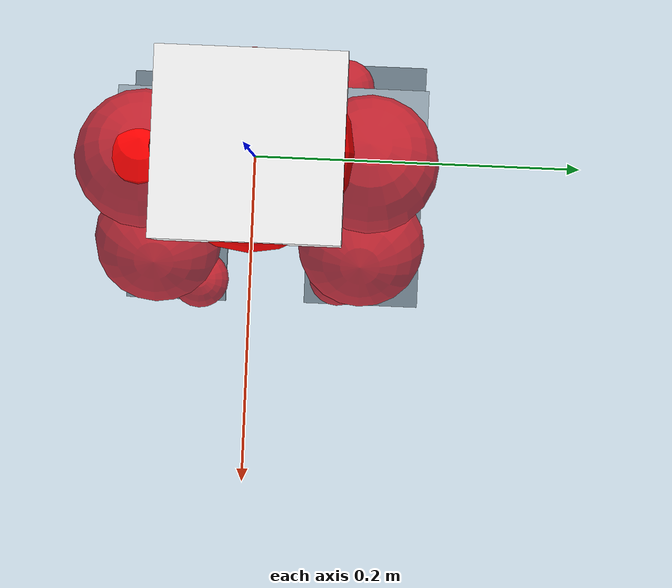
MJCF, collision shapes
<mujoco model="pi_12dof_release_v1">
  <compiler angle="radian" assetdir="assets" balanceinertia="true" inertiafromgeom="false"/>

  <option timestep="0.005" density="1.2" viscosity="2e-05"/>

  <size nkey="1"/>

  <visual>
    <quality shadowsize="8192"/>
    <map shadowclip="0.5"/>
  </visual>

  <default>
    <default class="/">
      <joint armature="0.01" damping="0.01" frictionloss="0.01"/>
      <geom contype="0" conaffinity="0" group="1" solref="-1000 -80"/>
      <site size="0.01 0.005 0.005" group="5"/>
      <general forcelimited="true" biastype="affine" gainprm="20" biasprm="0 -20 -0.5"/>
      <default class="foot">
        <geom size="0.0845 0.036 0.005" type="box" condim="6" group="4" priority="1" friction="0.9 0.2 0.2" solimp="0.015 1 0.005"/>
      </default>
      <default class="reward_collision_sphere">
        <geom group="5" rgba="1 0 0 1"/>
      </default>
    </default>
  </default>

  <asset>
    <texture type="skybox" colorspace="auto" name="//unnamed_texture_0" builtin="gradient" rgb1="0.95 0.95 0.95" rgb2="0.95 0.95 0.95" width="100" height="600"/>
    <texture type="2d" colorspace="auto" name="texplane" builtin="checker" rgb1="0.345 0.575 0.748" rgb2="0.345 0.575 0.748" markrgb="1 1 1" width="512" height="512"/>
    <material name="MatPlane" class="/" texture="texplane" texuniform="true" texrepeat="2 2" specular="0.9"/>
    <mesh name="baselink_1" class="/" file="baselink_1.STL"/>
    <mesh name="r_hip_pitch_link" class="/" file="r_hip_pitch_link.STL"/>
    <mesh name="r_hip_roll_link" class="/" file="r_hip_roll_link.STL"/>
    <mesh name="r_thigh_link" class="/" file="r_thigh_link.STL"/>
    <mesh name="r_calf_link" class="/" file="r_calf_link.STL"/>
    <mesh name="r_ankle_pitch_link" class="/" file="r_ankle_pitch_link.STL"/>
    <mesh name="r_ankle_roll_link" class="/" file="r_ankle_roll_link.STL"/>
    <mesh name="l_hip_pitch_link" class="/" file="l_hip_pitch_link.STL"/>
    <mesh name="l_hip_roll_link" class="/" file="l_hip_roll_link.STL"/>
    <mesh name="l_thigh_link" class="/" file="l_thigh_link.STL"/>
    <mesh name="l_calf_link" class="/" file="l_calf_link.STL"/>
    <mesh name="l_ankle_pitch_link" class="/" file="l_ankle_pitch_link.STL"/>
    <mesh name="l_ankle_roll_link" class="/" file="l_ankle_roll_link.STL"/>
  </asset>

  <worldbody>
    <geom name="floor" class="/" size="100 100 0.125" type="plane" group="0" material="MatPlane"/>
    <light name="toplight_shadow" class="/" pos="0 0 5" dir="0.0990148 0.0990148 -0.990148" type="directional" ambient="0.04 0.04 0.04" diffuse="0.55 0.55 0.55" specular="0.12 0.12 0.12"/>
    <light name="toplight_fill" class="/" pos="0 0 5" dir="0.0990148 0.0990148 -0.990148" type="directional" castshadow="false" ambient="0.04 0.04 0.04" diffuse="0.3 0.3 0.3" specular="0.08 0.08 0.08"/>
    <body name="trunk" pos="-0.000598236 0.000860864 -0.00281343" quat="1 -0.000202821 -4.23626e-05 2.78105e-06">
      <inertial pos="0.00265258 0.00234686 0.0530533" quat="0.694296 0.0119073 0.0126738 0.719479" mass="2.99774" diaginertia="0.014467 0.00558988 0.017808"/>
      <joint name="//unnamed_joint_0" type="free"/>
      <geom name="//unnamed_geom_1" class="/" type="mesh" density="0" rgba="1 1 1 1" mesh="baselink_1"/>
      <geom name="//unnamed_geom_2" class="/" size="0.0549571 0.0549571 0.0549571" pos="0 0 0.105636" type="box" rgba="1 1 1 1"/>
      <geom name="//unnamed_geom_3" class="reward_collision_sphere" size="0.0604528" pos="0 0 0.0924315"/>
      <site name="imu" class="/" pos="0.00359833 0.0138154 0.00351122" size="0.0109914"/>
      <camera name="track" class="/" pos="0 -1.80559 0" quat="0.707107 0.707107 0 0" mode="trackcom"/>
      <camera name="ego_camera" class="/" pos="0.0805636 0 0.237681" quat="-0.5 -0.5 0.5 0.5"/>
      <body name="r_hip_pitch_link" pos="0.000339138 -0.0219669 -0.0409089" quat="0.992354 -0.000493632 -0.123421 -0.000437734">
        <inertial pos="0.00256849 -0.0522961 5.21942e-05" quat="-0.0170608 0.705621 -0.0271477 0.707864" mass="0.482009" diaginertia="0.000156528 6.18853e-05 0.000334388"/>
        <joint name="r_hip_pitch_joint" class="/" pos="0 0 0" axis="0.0132831 -0.999887 0.00697503" range="-1.80619 1.25545" armature="0.00975651" damping="0.01905" frictionloss="0.0121147"/>
        <geom name="//unnamed_geom_4" class="/" type="mesh" density="0" rgba="0.75294 0.75294 0.75294 1" mesh="r_hip_pitch_link"/>
        <geom name="//unnamed_geom_5" class="/" size="0.000549571 0.000549571 0.000549571" type="box" rgba="0.75294 0.75294 0.75294 1"/>
        <body name="r_hip_roll_link" pos="0.00314569 -0.0504171 0.00219603" quat="1 0.000415058 0.000550049 -0.000153244">
          <inertial pos="0.000481501 -0.0023121 -0.08087" quat="0.705609 -0.079195 -0.0816871 0.699408" mass="0.50839" diaginertia="0.000481833 0.000160765 0.000496397"/>
          <joint name="r_hip_roll_joint" class="/" pos="0 0 0" axis="-0.999954 0.00929284 -0.00256571" range="-0.156153 0.454196" armature="0.00955375" damping="0.00987099" frictionloss="0.0117684"/>
          <geom name="//unnamed_geom_6" class="/" type="mesh" density="0" rgba="0.75294 0.75294 0.75294 1" mesh="r_hip_roll_link"/>
          <geom name="//unnamed_geom_7" class="/" size="0.000549571 0.000549571 0.000549571" type="box" rgba="0.75294 0.75294 0.75294 1"/>
          <geom name="//unnamed_geom_8" class="reward_collision_sphere" size="0.0439657"/>
          <body name="r_thigh_link" pos="0.00109015 -0.000478278 -0.0926441" quat="0.999999 8.18752e-05 -0.000920689 -0.000860604">
            <inertial pos="-0.00142144 0.000997608 -0.0603344" quat="0.737041 0.675716 -0.0124812 -0.00471785" mass="0.149333" diaginertia="0.000170896 5.7915e-05 0.000236263"/>
            <joint name="r_thigh_joint" class="/" pos="0 0 0" axis="-0.00309347 0.00420056 -0.999986" range="-0.33595 0.647589" armature="0.00964041" damping="0.012286" frictionloss="0.0113547"/>
            <geom name="//unnamed_geom_9" class="/" type="mesh" density="0" rgba="0.75294 0.75294 0.75294 1" mesh="r_thigh_link"/>
            <geom name="//unnamed_geom_10" class="/" size="0.000549571 0.000549571 0.000549571" type="box" rgba="0.75294 0.75294 0.75294 1"/>
            <body name="r_calf_link" pos="0.00138476 0.000156448 -0.0933691" quat="0.947821 -0.000256291 0.318801 0.000620921">
              <inertial pos="0.00229352 -0.00198515 -0.0918867" quat="0.999935 -0.0018146 0.00335053 0.0107521" mass="1.07995" diaginertia="0.00474348 0.00203077 0.000655689"/>
              <joint name="r_calf_joint" class="/" pos="0 0 0" axis="0.000410531 -0.999962 0.00865282" range="-1.65477 0.654045" armature="0.0106135" damping="0.014012" frictionloss="0.0120486"/>
              <geom name="//unnamed_geom_11" class="/" type="mesh" density="0" rgba="0.75294 0.75294 0.75294 1" mesh="r_calf_link"/>
              <geom name="//unnamed_geom_12" class="/" size="0.000549571 0.000549571 0.000549571" type="box" rgba="0.75294 0.75294 0.75294 1"/>
              <geom name="//unnamed_geom_13" class="reward_collision_sphere" size="0.0439657"/>
              <body name="r_ankle_pitch_link" pos="0.00163244 -9.95107e-06 -0.185226" quat="0.980028 0.000260203 -0.19886 -0.000344205">
                <inertial pos="0.00785113 0.00130369 0.000313993" quat="0.00103881 0.705128 -0.0141829 0.708938" mass="0.232632" diaginertia="0.000427743 0.000124556 0.000472175"/>
                <joint name="r_ankle_pitch_joint" class="/" pos="0 0 0" axis="0.00103463 -0.999999 6.96293e-05" range="-1.24118 0.491475" armature="0.0105444" damping="0" frictionloss="0.0124864"/>
                <geom name="//unnamed_geom_14" class="/" type="mesh" density="0" rgba="0.75294 0.75294 0.75294 1" mesh="r_ankle_pitch_link"/>
                <geom name="//unnamed_geom_15" class="/" size="0.0428665 0.0439657 0.0274785" type="box" rgba="0.75294 0.75294 0.75294 1"/>
                <body name="r_ankle_roll_link" pos="0.0823906 0.000310137 -0.00273242" quat="1 0.000140709 6.36949e-05 -0.000141713">
                  <inertial pos="-0.0255151 -0.000909254 -0.0193138" quat="0.556612 0.431088 0.436101 0.560501" mass="0.694823" diaginertia="0.00161182 0.000617296 0.00110264"/>
                  <joint name="r_ankle_roll_joint" class="/" pos="0 0 0" axis="-1 4.35074e-05 0.000360086" stiffness="0.00950957" range="-0.15983 0.131162" armature="0.0113163" damping="0.00460104" frictionloss="0.0110081"/>
                  <geom name="//unnamed_geom_16" class="/" type="mesh" density="0" rgba="0.75294 0.75294 0.75294 1" mesh="r_ankle_roll_link"/>
                  <geom name="//unnamed_geom_17" class="/" type="mesh" rgba="0.75294 0.75294 0.75294 1" mesh="r_ankle_roll_link"/>
                  <geom name="right_foot" class="foot" size="0.0869983 0.0380778 0.00486627" pos="-0.0547833 0 -0.0580998"/>
                  <geom name="//unnamed_geom_19" class="reward_collision_sphere" size="0.0439657" pos="-0.0537091 0 -0.026409"/>
                  <geom name="//unnamed_geom_20" class="reward_collision_sphere" size="0.0219828" pos="0.0161127 0.0180559 -0.052818"/>
                  <geom name="//unnamed_geom_21" class="reward_collision_sphere" size="0.0219828" pos="-0.128902 0.0180559 -0.052818"/>
                  <site name="right_foot" class="foot" pos="-0.0547833 0 -0.0580998" size="0.0109914"/>
                </body>
              </body>
            </body>
          </body>
        </body>
      </body>
      <body name="l_hip_pitch_link" pos="0.000319594 0.0203041 -0.0449424" quat="0.99224 1.57895e-05 -0.124335 -0.00054816">
        <inertial pos="0.00356285 0.0489797 -0.00236151" quat="-0.0426666 0.70502 0.0308794 0.707229" mass="0.527121" diaginertia="0.000184961 6.47072e-05 0.000413927"/>
        <joint name="l_hip_pitch_joint" class="/" pos="0 0 0" axis="-0.00112888 0.999999 -0.000396396" range="-1.19598 1.76298" armature="0.010925" damping="0.0269504" frictionloss="0.0112645"/>
        <geom name="//unnamed_geom_22" class="/" type="mesh" density="0" rgba="0.75294 0.75294 0.75294 1" mesh="l_hip_pitch_link"/>
        <geom name="//unnamed_geom_23" class="/" size="0.000549571 0.000549571 0.000549571" type="box" rgba="0.75294 0.75294 0.75294 1"/>
        <body name="l_hip_roll_link" pos="0.000433835 0.0499134 0.00122967" quat="1 3.09792e-05 -2.78182e-05 -4.362e-05">
          <inertial pos="-0.00128611 5.45651e-07 -0.0797562" quat="0.694234 -0.0859967 -0.0807215 0.710019" mass="0.528454" diaginertia="0.000481915 0.000171786 0.000544547"/>
          <joint name="l_hip_roll_joint" class="/" pos="0 0 0" axis="-0.999894 0.0106017 0.00997822" stiffness="0.00984255" range="-0.49945 0.151829" armature="0.00952756" damping="0.00965381" frictionloss="0.00962338"/>
          <geom name="//unnamed_geom_24" class="/" type="mesh" density="0" rgba="0.75294 0.75294 0.75294 1" mesh="l_hip_roll_link"/>
          <geom name="//unnamed_geom_25" class="/" size="0.000549571 0.000549571 0.000549571" type="box" rgba="0.75294 0.75294 0.75294 1"/>
          <geom name="//unnamed_geom_26" class="reward_collision_sphere" size="0.0439657"/>
          <body name="l_thigh_link" pos="0.00071639 -0.000367079 -0.0912253" quat="1 -4.22638e-05 -0.00035089 -0.000500544">
            <inertial pos="-0.00205911 -0.00158896 -0.0631715" quat="0.666602 0.745377 -0.00462609 0.00574745" mass="0.154174" diaginertia="0.000177756 5.77696e-05 0.000240687"/>
            <joint name="l_thigh_joint" class="/" pos="0 0 0" axis="-0.00887438 -0.010908 -0.999901" stiffness="0.0105926" range="-0.618514 0.344047" armature="0.0123816" damping="0.0013176" frictionloss="0.0125258"/>
            <geom name="//unnamed_geom_27" class="/" type="mesh" density="0" rgba="0.75294 0.75294 0.75294 1" mesh="l_thigh_link"/>
            <geom name="//unnamed_geom_28" class="/" size="0.000549571 0.000549571 0.000549571" type="box" rgba="0.75294 0.75294 0.75294 1"/>
            <body name="l_calf_link" pos="0.00189394 -0.0026215 -0.0938481" quat="0.947663 -3.4266e-06 0.319273 2.12749e-05">
              <inertial pos="0.00027837 0.00502549 -0.0918869" quat="0.999943 -0.00724516 0.00397249 0.00672278" mass="1.08317" diaginertia="0.00510673 0.0021372 0.000710734"/>
              <joint name="l_calf_joint" class="/" pos="0 0 0" axis="-0.0118289 0.999929 -0.00151875" range="-0.652351 1.59903" armature="0.0120873" damping="0.00530129" frictionloss="0.0102902"/>
              <geom name="//unnamed_geom_29" class="/" type="mesh" density="0" rgba="0.75294 0.75294 0.75294 1" mesh="l_calf_link"/>
              <geom name="//unnamed_geom_30" class="/" size="0.000549571 0.000549571 0.000549571" type="box" rgba="0.75294 0.75294 0.75294 1"/>
              <geom name="//unnamed_geom_31" class="reward_collision_sphere" size="0.0439657"/>
              <body name="l_ankle_pitch_link" pos="-0.00190656 0.00217395 -0.184367" quat="0.980024 -9.28383e-05 -0.198878 4.00809e-05">
                <inertial pos="0.00502333 -0.000406666 0.000135609" quat="-0.00340947 0.707196 0.00305513 0.707002" mass="0.230117" diaginertia="0.000436874 0.00013713 0.000483916"/>
                <joint name="l_ankle_pitch_joint" class="/" pos="0 0 0" axis="-0.002401 0.999983 -0.00540059" range="-0.50343 1.29164" armature="0.0110687" damping="0" frictionloss="0.0125227"/>
                <geom name="//unnamed_geom_32" class="/" type="mesh" density="0" rgba="0.75294 0.75294 0.75294 1" mesh="l_ankle_pitch_link"/>
                <geom name="//unnamed_geom_33" class="/" size="0.0428665 0.0439657 0.0274785" type="box" rgba="0.75294 0.75294 0.75294 1"/>
                <body name="l_ankle_roll_link" pos="0.0814387 -0.000192979 0.00298385" quat="1 -0.000249263 -0.000317268 0.000175297">
                  <inertial pos="-0.0279506 -0.000901709 -0.0180053" quat="0.556015 0.422685 0.433277 0.56961" mass="0.691745" diaginertia="0.0016612 0.00060823 0.0011516"/>
                  <joint name="l_ankle_roll_joint" class="/" pos="0 0 0" axis="-1 0.000122175 -0.000210305" range="-0.162792 0.21021" armature="0.00966944" damping="0.0196463" frictionloss="0.0095062"/>
                  <geom name="//unnamed_geom_34" class="/" type="mesh" density="0" rgba="0.75294 0.75294 0.75294 1" mesh="l_ankle_roll_link"/>
                  <geom name="//unnamed_geom_35" class="/" type="mesh" rgba="0.75294 0.75294 0.75294 1" mesh="l_ankle_roll_link"/>
                  <geom name="left_foot" class="foot" size="0.0917697 0.0433345 0.00520374" pos="-0.0547833 0 -0.0580998"/>
                  <geom name="//unnamed_geom_37" class="reward_collision_sphere" size="0.0439657" pos="-0.0537091 0 -0.026409"/>
                  <geom name="//unnamed_geom_38" class="reward_collision_sphere" size="0.0219828" pos="0.0161127 -0.0180559 -0.052818"/>
                  <geom name="//unnamed_geom_39" class="reward_collision_sphere" size="0.0219828" pos="-0.128902 -0.0180559 -0.052818"/>
                  <site name="left_foot" class="foot" pos="-0.0547833 0 -0.0580998" size="0.0109914"/>
                </body>
              </body>
            </body>
          </body>
        </body>
      </body>
    </body>
  </worldbody>

  <contact>
    <pair class="/" geom1="floor" geom2="right_foot" name="//unnamed_contact_1"/>
    <pair class="/" geom1="floor" geom2="left_foot" name="//unnamed_contact_0"/>
  </contact>

  <actuator>
    <general name="r_hip_pitch_joint" class="/" joint="r_hip_pitch_joint" forcerange="-23.7208 23.7208" gainprm="21.4017" biasprm="0 -21.4017 -0.591864"/>
    <general name="r_hip_roll_joint" class="/" joint="r_hip_roll_joint" forcerange="-25.3937 25.3937" gainprm="21.4017" biasprm="0 -21.4017 -0.591864"/>
    <general name="r_thigh_joint" class="/" joint="r_thigh_joint" forcerange="-22.7257 22.7257" gainprm="21.4017" biasprm="0 -21.4017 -0.591864"/>
    <general name="r_calf_joint" class="/" joint="r_calf_joint" forcerange="-22.7526 22.7526" gainprm="21.4017" biasprm="0 -21.4017 -0.591864"/>
    <general name="r_ankle_pitch_joint" class="/" joint="r_ankle_pitch_joint" forcerange="-23.8945 23.8945" gainprm="21.4017" biasprm="0 -21.4017 -0.591864"/>
    <general name="r_ankle_roll_joint" class="/" joint="r_ankle_roll_joint" forcerange="-22.4913 22.4913" gainprm="21.4017" biasprm="0 -21.4017 -0.591864"/>
    <general name="l_hip_pitch_joint" class="/" joint="l_hip_pitch_joint" forcerange="-23.4933 23.4933" gainprm="21.4017" biasprm="0 -21.4017 -0.591864"/>
    <general name="l_hip_roll_joint" class="/" joint="l_hip_roll_joint" forcerange="-20.7211 20.7211" gainprm="21.4017" biasprm="0 -21.4017 -0.591864"/>
    <general name="l_thigh_joint" class="/" joint="l_thigh_joint" forcerange="-23.1469 23.1469" gainprm="21.4017" biasprm="0 -21.4017 -0.591864"/>
    <general name="l_calf_joint" class="/" joint="l_calf_joint" forcerange="-23.8705 23.8705" gainprm="21.4017" biasprm="0 -21.4017 -0.591864"/>
    <general name="l_ankle_pitch_joint" class="/" joint="l_ankle_pitch_joint" forcerange="-25.4713 25.4713" gainprm="21.4017" biasprm="0 -21.4017 -0.591864"/>
    <general name="l_ankle_roll_joint" class="/" joint="l_ankle_roll_joint" forcerange="-23.3124 23.3124" gainprm="21.4017" biasprm="0 -21.4017 -0.591864"/>
  </actuator>

  <sensor>
    <gyro site="imu" name="imu_angular_velocity"/>
    <velocimeter site="imu" name="imu_linear_velocity"/>
    <framelinvel objtype="site" objname="left_foot" name="left_foot_global_linear_velocity"/>
    <framelinvel objtype="site" objname="right_foot" name="right_foot_global_linear_velocity"/>
  </sensor>

  <keyframe>
    <key name="home" qpos="0 0 0.291 1 0 0 0 0.4 0 0 -0.8 0.4 0 -0.4 0 0 0.8 -0.4 0"/>
  </keyframe>
</mujoco>
